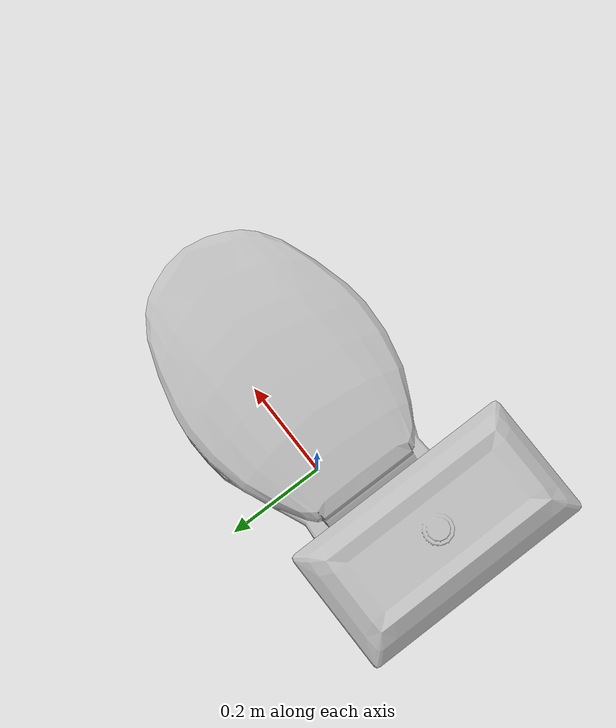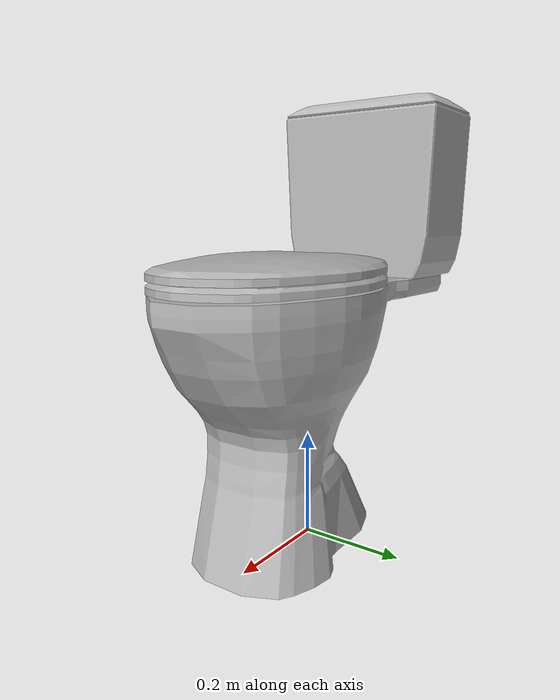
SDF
<?xml version='1.0'?>
<sdf version='1.4'>
  <model name='83'>
    <pose>0 0 0 0 0 0</pose>
    <static>true</static>
    <link name='link'>
      <collision name='collision'>
        <pose>0 0 0 0 0 0</pose>
        <geometry>
          <box>
            <size>0.707399 0.352686 2</size>
          </box>
        </geometry>
      </collision>
      <visual name='visual'>
        <pose>0 0 0 0 0 0</pose>
        <geometry>
          <mesh><uri>model://83/83.dae</uri></mesh>
        </geometry>
      </visual>
    </link>
  </model>
</sdf>
